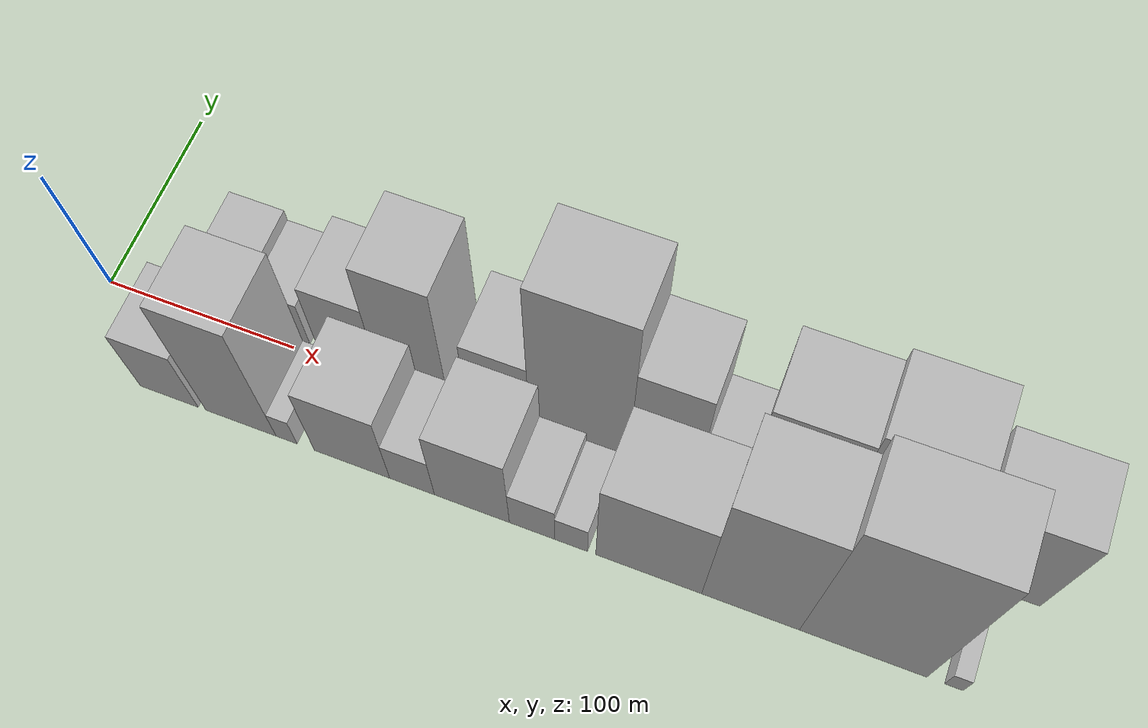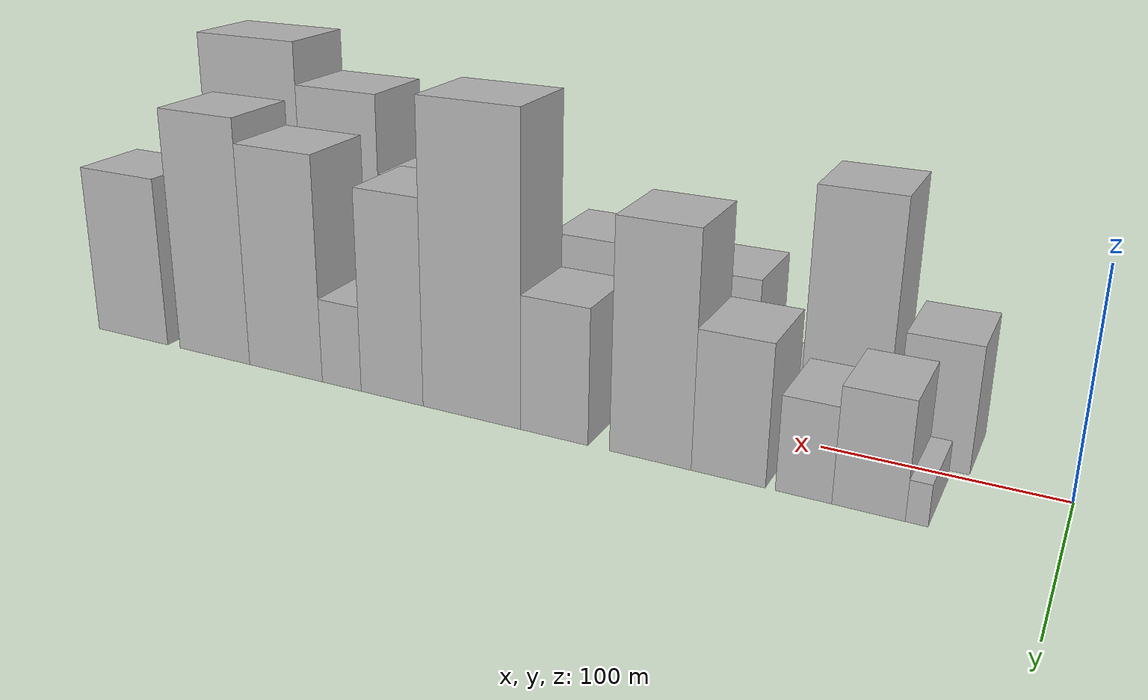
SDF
<sdf version="1.6">
 <world name="default">
  <scene>
   <sky><clouds><speed>12</speed></clouds></sky>
   <ambient>0.4 0.4 0.4 1</ambient>
   <background>0.7 0.7 0.7 1</background>
   <shadows>1</shadows>
  </scene>
  <gravity>0 0 -9.8066</gravity>
  <magnetic_field>6e-06 2.3e-05 -4.2e-05</magnetic_field>
  <physics default="0" name="default_physics" type="ode">
   <ode>
    <solver>
     <type>quick</type>
     <iters>10</iters>
     <sor>1.0</sor>
     <use_dynamic_moi_rescaling>0</use_dynamic_moi_rescaling>
    </solver>
    <constraints>
     <cfm>0</cfm>
     <erp>0.2</erp>
     <contact_max_correcting_vel>100</contact_max_correcting_vel>
     <contact_surface_layer>0.001</contact_surface_layer>
    </constraints>
   </ode>
   <max_step_size>0.004</max_step_size>
   <real_time_factor>1</real_time_factor>
   <real_time_update_rate>250</real_time_update_rate>
  </physics>
  <light name="sun" type="directional">
   <pose>0 0 10 0 0 0</pose>
   <diffuse>0.8 0.8 0.8 1</diffuse>
   <specular>0.2 0.2 0.2 1</specular>
   <attenuation>
    <range>1000</range>
    <constant>0.9</constant>
    <linear>0.01</linear>
    <quadratic>0.001</quadratic>
   </attenuation>
   <direction>-0.5 0.1 -0.9</direction>
  </light>
  <model name="building_1">
   <static>1</static>
   <pose>51.3015 24.5000 0 0.000000 0.000000 1.570796</pose>
   <link name="link">
    <pose>0 0 9.00 0 0 0</pose>
    <collision name="collision"><geometry><box><size>40.0000 8.6030 18.0000</size></box></geometry></collision>
    <visual name="visual">
     <cast_shadows>0</cast_shadows>
     <geometry><box><size>40.0000 8.6030 18.0000</size></box></geometry>
     <material>
      <script>
       <uri>model://HANNAS_wall/materials/scripts</uri>
       <uri>model://HANNAS_wall/materials/textures</uri>
       <name>vrc/HANNAS_wall</name>
      </script>
     </material>
    </visual>
   </link>
  </model>
  <model name="building_2">
   <static>1</static>
   <pose>69.7901 24.5000 0 0.000000 0.000000 1.570796</pose>
   <link name="link">
    <pose>0 0 25.50 0 0 0</pose>
    <collision name="collision"><geometry><box><size>40.0000 28.3742 51.0000</size></box></geometry></collision>
    <visual name="visual">
     <cast_shadows>0</cast_shadows>
     <geometry><box><size>40.0000 28.3742 51.0000</size></box></geometry>
     <material>
      <script>
       <uri>model://HANNAS_wall/materials/scripts</uri>
       <uri>model://HANNAS_wall/materials/textures</uri>
       <name>vrc/HANNAS_wall</name>
      </script>
     </material>
    </visual>
   </link>
  </model>
  <model name="building_3">
   <static>1</static>
   <pose>95.3571 24.5000 0 0.000000 0.000000 1.570796</pose>
   <link name="link">
    <pose>0 0 21.00 0 0 0</pose>
    <collision name="collision"><geometry><box><size>40.0000 22.7597 42.0000</size></box></geometry></collision>
    <visual name="visual">
     <cast_shadows>0</cast_shadows>
     <geometry><box><size>40.0000 22.7597 42.0000</size></box></geometry>
     <material>
      <script>
       <uri>model://HANNAS_wall/materials/scripts</uri>
       <uri>model://HANNAS_wall/materials/textures</uri>
       <name>vrc/HANNAS_wall</name>
      </script>
     </material>
    </visual>
   </link>
  </model>
  <model name="building_4">
   <static>1</static>
   <pose>126.5291 24.5000 0 0.000000 0.000000 1.570796</pose>
   <link name="link">
    <pose>0 0 31.50 0 0 0</pose>
    <collision name="collision"><geometry><box><size>40.0000 31.5842 63.0000</size></box></geometry></collision>
    <visual name="visual">
     <cast_shadows>0</cast_shadows>
     <geometry><box><size>40.0000 31.5842 63.0000</size></box></geometry>
     <material>
      <script>
       <uri>model://HANNAS_wall/materials/scripts</uri>
       <uri>model://HANNAS_wall/materials/textures</uri>
       <name>vrc/HANNAS_wall</name>
      </script>
     </material>
    </visual>
   </link>
  </model>
  <model name="building_5">
   <static>1</static>
   <pose>160.6583 24.5000 0 0.000000 0.000000 1.570796</pose>
   <link name="link">
    <pose>0 0 52.50 0 0 0</pose>
    <collision name="collision"><geometry><box><size>40.0000 36.6742 105.0000</size></box></geometry></collision>
    <visual name="visual">
     <cast_shadows>0</cast_shadows>
     <geometry><box><size>40.0000 36.6742 105.0000</size></box></geometry>
     <material>
      <script>
       <uri>model://HANNAS_wall/materials/scripts</uri>
       <uri>model://HANNAS_wall/materials/textures</uri>
       <name>vrc/HANNAS_wall</name>
      </script>
     </material>
    </visual>
   </link>
  </model>
  <model name="building_6">
   <static>1</static>
   <pose>205.2585 24.5000 0 0.000000 0.000000 1.570796</pose>
   <link name="link">
    <pose>0 0 31.50 0 0 0</pose>
    <collision name="collision"><geometry><box><size>40.0000 32.5263 63.0000</size></box></geometry></collision>
    <visual name="visual">
     <cast_shadows>0</cast_shadows>
     <geometry><box><size>40.0000 32.5263 63.0000</size></box></geometry>
     <material>
      <script>
       <uri>model://HANNAS_wall/materials/scripts</uri>
       <uri>model://HANNAS_wall/materials/textures</uri>
       <name>vrc/HANNAS_wall</name>
      </script>
     </material>
    </visual>
   </link>
  </model>
  <model name="building_7">
   <static>1</static>
   <pose>246.4356 24.5000 0 0.000000 0.000000 1.570796</pose>
   <link name="link">
    <pose>0 0 72.00 0 0 0</pose>
    <collision name="collision"><geometry><box><size>40.0000 49.8278 144.0000</size></box></geometry></collision>
    <visual name="visual">
     <cast_shadows>0</cast_shadows>
     <geometry><box><size>40.0000 49.8278 144.0000</size></box></geometry>
     <material>
      <script>
       <uri>model://HANNAS_wall/materials/scripts</uri>
       <uri>model://HANNAS_wall/materials/textures</uri>
       <name>vrc/HANNAS_wall</name>
      </script>
     </material>
    </visual>
   </link>
  </model>
  <model name="building_8">
   <static>1</static>
   <pose>288.2155 24.5000 0 0.000000 0.000000 1.570796</pose>
   <link name="link">
    <pose>0 0 49.50 0 0 0</pose>
    <collision name="collision"><geometry><box><size>40.0000 33.7321 99.0000</size></box></geometry></collision>
    <visual name="visual">
     <cast_shadows>0</cast_shadows>
     <geometry><box><size>40.0000 33.7321 99.0000</size></box></geometry>
     <material>
      <script>
       <uri>model://HANNAS_wall/materials/scripts</uri>
       <uri>model://HANNAS_wall/materials/textures</uri>
       <name>vrc/HANNAS_wall</name>
      </script>
     </material>
    </visual>
   </link>
  </model>
  <model name="building_9">
   <static>1</static>
   <pose>316.1081 24.5000 0 0.000000 0.000000 1.570796</pose>
   <link name="link">
    <pose>0 0 21.00 0 0 0</pose>
    <collision name="collision"><geometry><box><size>40.0000 22.0531 42.0000</size></box></geometry></collision>
    <visual name="visual">
     <cast_shadows>0</cast_shadows>
     <geometry><box><size>40.0000 22.0531 42.0000</size></box></geometry>
     <material>
      <script>
       <uri>model://HANNAS_wall/materials/scripts</uri>
       <uri>model://HANNAS_wall/materials/textures</uri>
       <name>vrc/HANNAS_wall</name>
      </script>
     </material>
    </visual>
   </link>
  </model>
  <model name="building_10">
   <static>1</static>
   <pose>348.7039 24.5000 0 0.000000 0.000000 1.570796</pose>
   <link name="link">
    <pose>0 0 55.50 0 0 0</pose>
    <collision name="collision"><geometry><box><size>40.0000 43.1385 111.0000</size></box></geometry></collision>
    <visual name="visual">
     <cast_shadows>0</cast_shadows>
     <geometry><box><size>40.0000 43.1385 111.0000</size></box></geometry>
     <material>
      <script>
       <uri>model://HANNAS_wall/materials/scripts</uri>
       <uri>model://HANNAS_wall/materials/textures</uri>
       <name>vrc/HANNAS_wall</name>
      </script>
     </material>
    </visual>
   </link>
  </model>
  <model name="building_11">
   <static>1</static>
   <pose>392.2593 24.5000 0 0.000000 0.000000 1.570796</pose>
   <link name="link">
    <pose>0 0 61.50 0 0 0</pose>
    <collision name="collision"><geometry><box><size>40.0000 43.9724 123.0000</size></box></geometry></collision>
    <visual name="visual">
     <cast_shadows>0</cast_shadows>
     <geometry><box><size>40.0000 43.9724 123.0000</size></box></geometry>
     <material>
      <script>
       <uri>model://HANNAS_wall/materials/scripts</uri>
       <uri>model://HANNAS_wall/materials/textures</uri>
       <name>vrc/HANNAS_wall</name>
      </script>
     </material>
    </visual>
   </link>
  </model>
  <model name="building_12">
   <static>1</static>
   <pose>445.4238 24.5000 0 0.000000 0.000000 1.570796</pose>
   <link name="link">
    <pose>0 0 43.50 0 0 0</pose>
    <collision name="collision"><geometry><box><size>40.0000 46.3566 87.0000</size></box></geometry></collision>
    <visual name="visual">
     <cast_shadows>0</cast_shadows>
     <geometry><box><size>40.0000 46.3566 87.0000</size></box></geometry>
     <material>
      <script>
       <uri>model://HANNAS_wall/materials/scripts</uri>
       <uri>model://HANNAS_wall/materials/textures</uri>
       <name>vrc/HANNAS_wall</name>
      </script>
     </material>
    </visual>
   </link>
  </model>
  <model name="building_13">
   <static>1</static>
   <pose>55.4847 -24.5000 0 0.000000 0.000000 1.570796</pose>
   <link name="link">
    <pose>0 0 28.50 0 0 0</pose>
    <collision name="collision"><geometry><box><size>40.0000 30.9694 57.0000</size></box></geometry></collision>
    <visual name="visual">
     <cast_shadows>0</cast_shadows>
     <geometry><box><size>40.0000 30.9694 57.0000</size></box></geometry>
     <material>
      <script>
       <uri>model://HANNAS_wall/materials/scripts</uri>
       <uri>model://HANNAS_wall/materials/textures</uri>
       <name>vrc/HANNAS_wall</name>
      </script>
     </material>
    </visual>
   </link>
  </model>
  <model name="building_14">
   <static>1</static>
   <pose>93.5001 -24.5000 0 0.000000 0.000000 1.570796</pose>
   <link name="link">
    <pose>0 0 57.00 0 0 0</pose>
    <collision name="collision"><geometry><box><size>40.0000 37.0613 114.0000</size></box></geometry></collision>
    <visual name="visual">
     <cast_shadows>0</cast_shadows>
     <geometry><box><size>40.0000 37.0613 114.0000</size></box></geometry>
     <material>
      <script>
       <uri>model://HANNAS_wall/materials/scripts</uri>
       <uri>model://HANNAS_wall/materials/textures</uri>
       <name>vrc/HANNAS_wall</name>
      </script>
     </material>
    </visual>
   </link>
  </model>
  <model name="building_15">
   <static>1</static>
   <pose>117.4881 -24.5000 0 0.000000 0.000000 1.570796</pose>
   <link name="link">
    <pose>0 0 13.50 0 0 0</pose>
    <collision name="collision"><geometry><box><size>40.0000 10.9147 27.0000</size></box></geometry></collision>
    <visual name="visual">
     <cast_shadows>0</cast_shadows>
     <geometry><box><size>40.0000 10.9147 27.0000</size></box></geometry>
     <material>
      <script>
       <uri>model://HANNAS_wall/materials/scripts</uri>
       <uri>model://HANNAS_wall/materials/textures</uri>
       <name>vrc/HANNAS_wall</name>
      </script>
     </material>
    </visual>
   </link>
  </model>
  <model name="building_16">
   <static>1</static>
   <pose>151.2988 -24.5000 0 0.000000 0.000000 1.570796</pose>
   <link name="link">
    <pose>0 0 34.50 0 0 0</pose>
    <collision name="collision"><geometry><box><size>40.0000 38.7068 69.0000</size></box></geometry></collision>
    <visual name="visual">
     <cast_shadows>0</cast_shadows>
     <geometry><box><size>40.0000 38.7068 69.0000</size></box></geometry>
     <material>
      <script>
       <uri>model://HANNAS_wall/materials/scripts</uri>
       <uri>model://HANNAS_wall/materials/textures</uri>
       <name>vrc/HANNAS_wall</name>
      </script>
     </material>
    </visual>
   </link>
  </model>
  <model name="building_17">
   <static>1</static>
   <pose>181.9933 -24.5000 0 0.000000 0.000000 1.570796</pose>
   <link name="link">
    <pose>0 0 21.00 0 0 0</pose>
    <collision name="collision"><geometry><box><size>40.0000 22.6822 42.0000</size></box></geometry></collision>
    <visual name="visual">
     <cast_shadows>0</cast_shadows>
     <geometry><box><size>40.0000 22.6822 42.0000</size></box></geometry>
     <material>
      <script>
       <uri>model://HANNAS_wall/materials/scripts</uri>
       <uri>model://HANNAS_wall/materials/textures</uri>
       <name>vrc/HANNAS_wall</name>
      </script>
     </material>
    </visual>
   </link>
  </model>
  <model name="building_18">
   <static>1</static>
   <pose>212.1033 -24.5000 0 0.000000 0.000000 1.570796</pose>
   <link name="link">
    <pose>0 0 37.50 0 0 0</pose>
    <collision name="collision"><geometry><box><size>40.0000 37.5378 75.0000</size></box></geometry></collision>
    <visual name="visual">
     <cast_shadows>0</cast_shadows>
     <geometry><box><size>40.0000 37.5378 75.0000</size></box></geometry>
     <material>
      <script>
       <uri>model://HANNAS_wall/materials/scripts</uri>
       <uri>model://HANNAS_wall/materials/textures</uri>
       <name>vrc/HANNAS_wall</name>
      </script>
     </material>
    </visual>
   </link>
  </model>
  <model name="building_19">
   <static>1</static>
   <pose>242.0917 -24.5000 0 0.000000 0.000000 1.570796</pose>
   <link name="link">
    <pose>0 0 19.50 0 0 0</pose>
    <collision name="collision"><geometry><box><size>40.0000 22.4389 39.0000</size></box></geometry></collision>
    <visual name="visual">
     <cast_shadows>0</cast_shadows>
     <geometry><box><size>40.0000 22.4389 39.0000</size></box></geometry>
     <material>
      <script>
       <uri>model://HANNAS_wall/materials/scripts</uri>
       <uri>model://HANNAS_wall/materials/textures</uri>
       <name>vrc/HANNAS_wall</name>
      </script>
     </material>
    </visual>
   </link>
  </model>
  <model name="building_20">
   <static>1</static>
   <pose>261.3202 -24.5000 0 0.000000 0.000000 1.570796</pose>
   <link name="link">
    <pose>0 0 15.00 0 0 0</pose>
    <collision name="collision"><geometry><box><size>40.0000 16.0181 30.0000</size></box></geometry></collision>
    <visual name="visual">
     <cast_shadows>0</cast_shadows>
     <geometry><box><size>40.0000 16.0181 30.0000</size></box></geometry>
     <material>
      <script>
       <uri>model://HANNAS_wall/materials/scripts</uri>
       <uri>model://HANNAS_wall/materials/textures</uri>
       <name>vrc/HANNAS_wall</name>
      </script>
     </material>
    </visual>
   </link>
  </model>
  <model name="building_21">
   <static>1</static>
   <pose>298.8502 -24.5000 0 0.000000 0.000000 1.570796</pose>
   <link name="link">
    <pose>0 0 45.00 0 0 0</pose>
    <collision name="collision"><geometry><box><size>40.0000 51.0420 90.0000</size></box></geometry></collision>
    <visual name="visual">
     <cast_shadows>0</cast_shadows>
     <geometry><box><size>40.0000 51.0420 90.0000</size></box></geometry>
     <material>
      <script>
       <uri>model://HANNAS_wall/materials/scripts</uri>
       <uri>model://HANNAS_wall/materials/textures</uri>
       <name>vrc/HANNAS_wall</name>
      </script>
     </material>
    </visual>
   </link>
  </model>
  <model name="building_22">
   <static>1</static>
   <pose>347.4805 -24.5000 0 0.000000 0.000000 1.570796</pose>
   <link name="link">
    <pose>0 0 64.50 0 0 0</pose>
    <collision name="collision"><geometry><box><size>40.0000 46.2185 129.0000</size></box></geometry></collision>
    <visual name="visual">
     <cast_shadows>0</cast_shadows>
     <geometry><box><size>40.0000 46.2185 129.0000</size></box></geometry>
     <material>
      <script>
       <uri>model://HANNAS_wall/materials/scripts</uri>
       <uri>model://HANNAS_wall/materials/textures</uri>
       <name>vrc/HANNAS_wall</name>
      </script>
     </material>
    </visual>
   </link>
  </model>
  <model name="building_23">
   <static>1</static>
   <pose>399.9981 -24.5000 0 0.000000 0.000000 1.570796</pose>
   <link name="link">
    <pose>0 0 75.00 0 0 0</pose>
    <collision name="collision"><geometry><box><size>40.0000 58.8167 150.0000</size></box></geometry></collision>
    <visual name="visual">
     <cast_shadows>0</cast_shadows>
     <geometry><box><size>40.0000 58.8167 150.0000</size></box></geometry>
     <material>
      <script>
       <uri>model://HANNAS_wall/materials/scripts</uri>
       <uri>model://HANNAS_wall/materials/textures</uri>
       <name>vrc/HANNAS_wall</name>
      </script>
     </material>
    </visual>
   </link>
  </model>
  <model name="building_24">
   <static>1</static>
   <pose>441.6138 -24.5000 0 0.000000 0.000000 1.570796</pose>
   <link name="link">
    <pose>0 0 9.00 0 0 0</pose>
    <collision name="collision"><geometry><box><size>40.0000 8.4147 18.0000</size></box></geometry></collision>
    <visual name="visual">
     <cast_shadows>0</cast_shadows>
     <geometry><box><size>40.0000 8.4147 18.0000</size></box></geometry>
     <material>
      <script>
       <uri>model://HANNAS_wall/materials/scripts</uri>
       <uri>model://HANNAS_wall/materials/textures</uri>
       <name>vrc/HANNAS_wall</name>
      </script>
     </material>
    </visual>
   </link>
  </model>
 </world>
</sdf>
